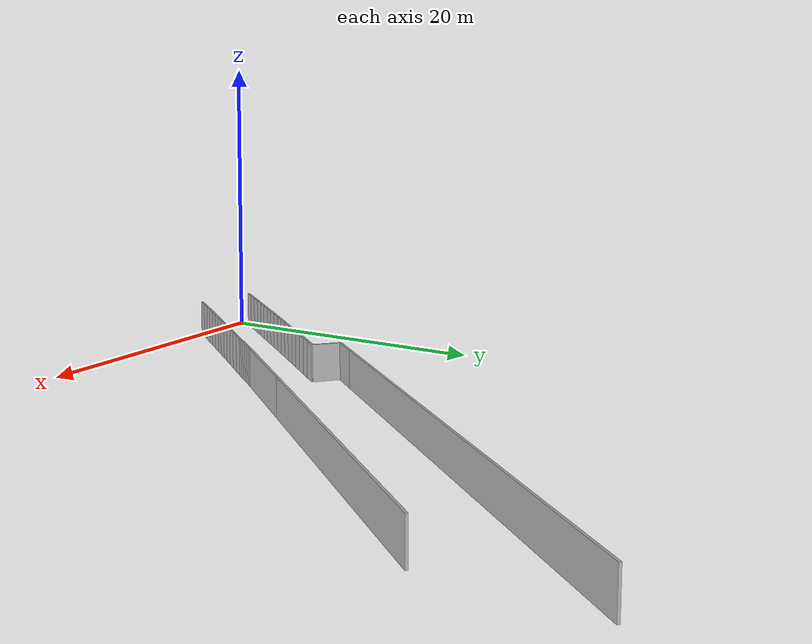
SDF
<?xml version="1.0" ?>
<sdf version="1.6">
  <model name="sps_0738">
    <pose frame="">0 0 0 0 -0 0</pose>
    <static>1</static>
    <self_collide>0</self_collide>
    <allow_auto_disable>0</allow_auto_disable>
    <link name="Wall36">
      <kinematic>0</kinematic>
      <gravity>1</gravity>
      <self_collide>0</self_collide>
      <collision name="collision">
        <geometry>
          <box>
            <size>35.2684 0.15 2.5</size>
          </box>
        </geometry>
        <pose frame="">0 0 0 0 -0 0</pose>
      </collision>
      <visual name="visual">
        <geometry>
          <box>
            <size>35.2684 0.15 2.5</size>
          </box>
        </geometry>
        <pose frame="">0 0 0 0 -0 0</pose>
        <cast_shadows>1</cast_shadows>
        <transparency>0.0</transparency>
      </visual>
      <pose frame="">23.0693 31.3468 1.25 0 0 -2.27376</pose>
    </link>
    <link name="Wall37">
      <kinematic>0</kinematic>
      <gravity>1</gravity>
      <self_collide>0</self_collide>
      <collision name="collision">
        <geometry>
          <box>
            <size>2.2665 0.15 2.5</size>
          </box>
        </geometry>
        <pose frame="">0 0 0 0 -0 0</pose>
      </collision>
      <visual name="visual">
        <geometry>
          <box>
            <size>2.2665 0.15 2.5</size>
          </box>
        </geometry>
        <pose frame="">0 0 0 0 -0 0</pose>
        <cast_shadows>1</cast_shadows>
        <transparency>0.0</transparency>
      </visual>
      <pose frame="">10.9365 17.0285 1.25 0 0 -2.27376</pose>
    </link>
    <link name="Wall38">
      <kinematic>0</kinematic>
      <gravity>1</gravity>
      <self_collide>0</self_collide>
      <collision name="collision">
        <geometry>
          <box>
            <size>7.37648 0.15 2.5</size>
          </box>
        </geometry>
        <pose frame="">0 0 0 0 -0 0</pose>
      </collision>
      <visual name="visual">
        <geometry>
          <box>
            <size>7.37648 0.15 2.5</size>
          </box>
        </geometry>
        <pose frame="">0 0 0 0 -0 0</pose>
        <cast_shadows>1</cast_shadows>
        <transparency>0.0</transparency>
      </visual>
      <pose frame="">17.1869 15.0785 1.25 0 -0 0.868142</pose>
    </link>
    <link name="Wall39">
      <kinematic>0</kinematic>
      <gravity>1</gravity>
      <self_collide>0</self_collide>
      <collision name="collision">
        <geometry>
          <box>
            <size>23.0547 0.15 2.5</size>
          </box>
        </geometry>
        <pose frame="">0 0 0 0 -0 0</pose>
      </collision>
      <visual name="visual">
        <geometry>
          <box>
            <size>23.0547 0.15 2.5</size>
          </box>
        </geometry>
        <pose frame="">0 0 0 0 -0 0</pose>
        <cast_shadows>1</cast_shadows>
        <transparency>0.0</transparency>
      </visual>
      <pose frame="">27.0199 26.6899 1.25 0 -0 0.868142</pose>
    </link>
    <link name="Wall368">
      <kinematic>0</kinematic>
      <gravity>1</gravity>
      <self_collide>0</self_collide>
      <collision name="collision">
        <geometry>
          <box>
            <size>1.92847 0.15 2.5</size>
          </box>
        </geometry>
        <pose frame="">0 0 0 0 -0 0</pose>
      </collision>
      <visual name="visual">
        <geometry>
          <box>
            <size>1.92847 0.15 2.5</size>
          </box>
        </geometry>
        <pose frame="">0 0 0 0 -0 0</pose>
        <cast_shadows>1</cast_shadows>
        <transparency>0.0</transparency>
      </visual>
      <pose frame="">10.9385 15.5393 1.25 0 0 -0.704654</pose>
    </link>
    <link name="Wall9972">
      <kinematic>0</kinematic>
      <gravity>1</gravity>
      <self_collide>0</self_collide>
      <collision name="collision">
        <geometry>
          <box>
            <size>1.01925 0.15 2.5</size>
          </box>
        </geometry>
        <pose frame="">0 0 0 0 -0 0</pose>
      </collision>
      <visual name="visual">
        <geometry>
          <box>
            <size>1.01925 0.15 2.5</size>
          </box>
        </geometry>
        <pose frame="">0 0 0 0 -0 0</pose>
        <cast_shadows>1</cast_shadows>
        <transparency>0.0</transparency>
      </visual>
      <pose frame="">11.346 14.5239 1.25 0 0 -2.26767</pose>
    </link>
    <link name="Wall9973">
      <kinematic>0</kinematic>
      <gravity>1</gravity>
      <self_collide>0</self_collide>
      <collision name="collision">
        <geometry>
          <box>
            <size>1.0192 0.15 2.5</size>
          </box>
        </geometry>
        <pose frame="">0 0 0 0 -0 0</pose>
      </collision>
      <visual name="visual">
        <geometry>
          <box>
            <size>1.0192 0.15 2.5</size>
          </box>
        </geometry>
        <pose frame="">0 0 0 0 -0 0</pose>
        <cast_shadows>1</cast_shadows>
        <transparency>0.0</transparency>
      </visual>
      <pose frame="">10.6922 13.742 1.25 0 0 -2.26677</pose>
    </link>
    <link name="Wall9974">
      <kinematic>0</kinematic>
      <gravity>1</gravity>
      <self_collide>0</self_collide>
      <collision name="collision">
        <geometry>
          <box>
            <size>1.01886 0.15 2.5</size>
          </box>
        </geometry>
        <pose frame="">0 0 0 0 -0 0</pose>
      </collision>
      <visual name="visual">
        <geometry>
          <box>
            <size>1.01886 0.15 2.5</size>
          </box>
        </geometry>
        <pose frame="">0 0 0 0 -0 0</pose>
        <cast_shadows>1</cast_shadows>
        <transparency>0.0</transparency>
      </visual>
      <pose frame="">10.0392 12.9596 1.25 0 0 -2.26572</pose>
    </link>
    <link name="Wall9975">
      <kinematic>0</kinematic>
      <gravity>1</gravity>
      <self_collide>0</self_collide>
      <collision name="collision">
        <geometry>
          <box>
            <size>1.01911 0.15 2.5</size>
          </box>
        </geometry>
        <pose frame="">0 0 0 0 -0 0</pose>
      </collision>
      <visual name="visual">
        <geometry>
          <box>
            <size>1.01911 0.15 2.5</size>
          </box>
        </geometry>
        <pose frame="">0 0 0 0 -0 0</pose>
        <cast_shadows>1</cast_shadows>
        <transparency>0.0</transparency>
      </visual>
      <pose frame="">9.38726 12.1765 1.25 0 0 -2.26442</pose>
    </link>
    <link name="Wall9976">
      <kinematic>0</kinematic>
      <gravity>1</gravity>
      <self_collide>0</self_collide>
      <collision name="collision">
        <geometry>
          <box>
            <size>1.01921 0.15 2.5</size>
          </box>
        </geometry>
        <pose frame="">0 0 0 0 -0 0</pose>
      </collision>
      <visual name="visual">
        <geometry>
          <box>
            <size>1.01921 0.15 2.5</size>
          </box>
        </geometry>
        <pose frame="">0 0 0 0 -0 0</pose>
        <cast_shadows>1</cast_shadows>
        <transparency>0.0</transparency>
      </visual>
      <pose frame="">8.73608 11.3925 1.25 0 0 -2.26341</pose>
    </link>
    <link name="Wall9977">
      <kinematic>0</kinematic>
      <gravity>1</gravity>
      <self_collide>0</self_collide>
      <collision name="collision">
        <geometry>
          <box>
            <size>1.0191 0.15 2.5</size>
          </box>
        </geometry>
        <pose frame="">0 0 0 0 -0 0</pose>
      </collision>
      <visual name="visual">
        <geometry>
          <box>
            <size>1.0191 0.15 2.5</size>
          </box>
        </geometry>
        <pose frame="">0 0 0 0 -0 0</pose>
        <cast_shadows>1</cast_shadows>
        <transparency>0.0</transparency>
      </visual>
      <pose frame="">8.08575 10.6078 1.25 0 0 -2.26225</pose>
    </link>
    <link name="Wall9978">
      <kinematic>0</kinematic>
      <gravity>1</gravity>
      <self_collide>0</self_collide>
      <collision name="collision">
        <geometry>
          <box>
            <size>1.01912 0.15 2.5</size>
          </box>
        </geometry>
        <pose frame="">0 0 0 0 -0 0</pose>
      </collision>
      <visual name="visual">
        <geometry>
          <box>
            <size>1.01912 0.15 2.5</size>
          </box>
        </geometry>
        <pose frame="">0 0 0 0 -0 0</pose>
        <cast_shadows>1</cast_shadows>
        <transparency>0.0</transparency>
      </visual>
      <pose frame="">7.43633 9.8224 1.25 0 0 -2.26115</pose>
    </link>
    <link name="Wall9979">
      <kinematic>0</kinematic>
      <gravity>1</gravity>
      <self_collide>0</self_collide>
      <collision name="collision">
        <geometry>
          <box>
            <size>1.01925 0.15 2.5</size>
          </box>
        </geometry>
        <pose frame="">0 0 0 0 -0 0</pose>
      </collision>
      <visual name="visual">
        <geometry>
          <box>
            <size>1.01925 0.15 2.5</size>
          </box>
        </geometry>
        <pose frame="">0 0 0 0 -0 0</pose>
        <cast_shadows>1</cast_shadows>
        <transparency>0.0</transparency>
      </visual>
      <pose frame="">6.78765 9.0363 1.25 0 0 -2.26027</pose>
    </link>
    <link name="Wall9980">
      <kinematic>0</kinematic>
      <gravity>1</gravity>
      <self_collide>0</self_collide>
      <collision name="collision">
        <geometry>
          <box>
            <size>1.0192 0.15 2.5</size>
          </box>
        </geometry>
        <pose frame="">0 0 0 0 -0 0</pose>
      </collision>
      <visual name="visual">
        <geometry>
          <box>
            <size>1.0192 0.15 2.5</size>
          </box>
        </geometry>
        <pose frame="">0 0 0 0 -0 0</pose>
        <cast_shadows>1</cast_shadows>
        <transparency>0.0</transparency>
      </visual>
      <pose frame="">6.13976 8.2495 1.25 0 0 -2.25907</pose>
    </link>
    <link name="Wall9981">
      <kinematic>0</kinematic>
      <gravity>1</gravity>
      <self_collide>0</self_collide>
      <collision name="collision">
        <geometry>
          <box>
            <size>1.01921 0.15 2.5</size>
          </box>
        </geometry>
        <pose frame="">0 0 0 0 -0 0</pose>
      </collision>
      <visual name="visual">
        <geometry>
          <box>
            <size>1.01921 0.15 2.5</size>
          </box>
        </geometry>
        <pose frame="">0 0 0 0 -0 0</pose>
        <cast_shadows>1</cast_shadows>
        <transparency>0.0</transparency>
      </visual>
      <pose frame="">5.49276 7.46199 1.25 0 0 -2.25805</pose>
    </link>
    <link name="Wall9982">
      <kinematic>0</kinematic>
      <gravity>1</gravity>
      <self_collide>0</self_collide>
      <collision name="collision">
        <geometry>
          <box>
            <size>1.01902 0.15 2.5</size>
          </box>
        </geometry>
        <pose frame="">0 0 0 0 -0 0</pose>
      </collision>
      <visual name="visual">
        <geometry>
          <box>
            <size>1.01902 0.15 2.5</size>
          </box>
        </geometry>
        <pose frame="">0 0 0 0 -0 0</pose>
        <cast_shadows>1</cast_shadows>
        <transparency>0.0</transparency>
      </visual>
      <pose frame="">4.84664 6.67387 1.25 0 0 -2.25697</pose>
    </link>
    <link name="Wall9983">
      <kinematic>0</kinematic>
      <gravity>1</gravity>
      <self_collide>0</self_collide>
      <collision name="collision">
        <geometry>
          <box>
            <size>1.01909 0.15 2.5</size>
          </box>
        </geometry>
        <pose frame="">0 0 0 0 -0 0</pose>
      </collision>
      <visual name="visual">
        <geometry>
          <box>
            <size>1.01909 0.15 2.5</size>
          </box>
        </geometry>
        <pose frame="">0 0 0 0 -0 0</pose>
        <cast_shadows>1</cast_shadows>
        <transparency>0.0</transparency>
      </visual>
      <pose frame="">4.20144 5.88509 1.25 0 0 -2.25583</pose>
    </link>
    <link name="Wall9984">
      <kinematic>0</kinematic>
      <gravity>1</gravity>
      <self_collide>0</self_collide>
      <collision name="collision">
        <geometry>
          <box>
            <size>1.0192 0.15 2.5</size>
          </box>
        </geometry>
        <pose frame="">0 0 0 0 -0 0</pose>
      </collision>
      <visual name="visual">
        <geometry>
          <box>
            <size>1.0192 0.15 2.5</size>
          </box>
        </geometry>
        <pose frame="">0 0 0 0 -0 0</pose>
        <cast_shadows>1</cast_shadows>
        <transparency>0.0</transparency>
      </visual>
      <pose frame="">3.55706 5.0955 1.25 0 0 -2.25473</pose>
    </link>
    <link name="Wall9985">
      <kinematic>0</kinematic>
      <gravity>1</gravity>
      <self_collide>0</self_collide>
      <collision name="collision">
        <geometry>
          <box>
            <size>1.01922 0.15 2.5</size>
          </box>
        </geometry>
        <pose frame="">0 0 0 0 -0 0</pose>
      </collision>
      <visual name="visual">
        <geometry>
          <box>
            <size>1.01922 0.15 2.5</size>
          </box>
        </geometry>
        <pose frame="">0 0 0 0 -0 0</pose>
        <cast_shadows>1</cast_shadows>
        <transparency>0.0</transparency>
      </visual>
      <pose frame="">2.91347 4.30519 1.25 0 0 -2.25371</pose>
    </link>
    <link name="Wall9986">
      <kinematic>0</kinematic>
      <gravity>1</gravity>
      <self_collide>0</self_collide>
      <collision name="collision">
        <geometry>
          <box>
            <size>1.01903 0.15 2.5</size>
          </box>
        </geometry>
        <pose frame="">0 0 0 0 -0 0</pose>
      </collision>
      <visual name="visual">
        <geometry>
          <box>
            <size>1.01903 0.15 2.5</size>
          </box>
        </geometry>
        <pose frame="">0 0 0 0 -0 0</pose>
        <cast_shadows>1</cast_shadows>
        <transparency>0.0</transparency>
      </visual>
      <pose frame="">2.27077 3.51427 1.25 0 0 -2.25263</pose>
    </link>
    <link name="Wall9987">
      <kinematic>0</kinematic>
      <gravity>1</gravity>
      <self_collide>0</self_collide>
      <collision name="collision">
        <geometry>
          <box>
            <size>1.01927 0.15 2.5</size>
          </box>
        </geometry>
        <pose frame="">0 0 0 0 -0 0</pose>
      </collision>
      <visual name="visual">
        <geometry>
          <box>
            <size>1.01927 0.15 2.5</size>
          </box>
        </geometry>
        <pose frame="">0 0 0 0 -0 0</pose>
        <cast_shadows>1</cast_shadows>
        <transparency>0.0</transparency>
      </visual>
      <pose frame="">1.62887 2.72267 1.25 0 0 -2.25167</pose>
    </link>
    <link name="Wall9988">
      <kinematic>0</kinematic>
      <gravity>1</gravity>
      <self_collide>0</self_collide>
      <collision name="collision">
        <geometry>
          <box>
            <size>1.01927 0.15 2.5</size>
          </box>
        </geometry>
        <pose frame="">0 0 0 0 -0 0</pose>
      </collision>
      <visual name="visual">
        <geometry>
          <box>
            <size>1.01927 0.15 2.5</size>
          </box>
        </geometry>
        <pose frame="">0 0 0 0 -0 0</pose>
        <cast_shadows>1</cast_shadows>
        <transparency>0.0</transparency>
      </visual>
      <pose frame="">0.987754 1.93028 1.25 0 0 -2.25044</pose>
    </link>
    <link name="Wall9989">
      <kinematic>0</kinematic>
      <gravity>1</gravity>
      <self_collide>0</self_collide>
      <collision name="collision">
        <geometry>
          <box>
            <size>1.01921 0.15 2.5</size>
          </box>
        </geometry>
        <pose frame="">0 0 0 0 -0 0</pose>
      </collision>
      <visual name="visual">
        <geometry>
          <box>
            <size>1.01921 0.15 2.5</size>
          </box>
        </geometry>
        <pose frame="">0 0 0 0 -0 0</pose>
        <cast_shadows>1</cast_shadows>
        <transparency>0.0</transparency>
      </visual>
      <pose frame="">0.347556 1.13719 1.25 0 0 -2.24941</pose>
    </link>
    <link name="Wall10014">
      <kinematic>0</kinematic>
      <gravity>1</gravity>
      <self_collide>0</self_collide>
      <collision name="collision">
        <geometry>
          <box>
            <size>0.507656 0.15 2.5</size>
          </box>
        </geometry>
        <pose frame="">0 0 0 0 -0 0</pose>
      </collision>
      <visual name="visual">
        <geometry>
          <box>
            <size>0.507656 0.15 2.5</size>
          </box>
        </geometry>
        <pose frame="">0 0 0 0 -0 0</pose>
        <cast_shadows>1</cast_shadows>
        <transparency>0.0</transparency>
      </visual>
      <pose frame="">14.6415 12.0684 1.25 0 0 -2.26246</pose>
    </link>
    <link name="Wall10015">
      <kinematic>0</kinematic>
      <gravity>1</gravity>
      <self_collide>0</self_collide>
      <collision name="collision">
        <geometry>
          <box>
            <size>0.507545 0.15 2.5</size>
          </box>
        </geometry>
        <pose frame="">0 0 0 0 -0 0</pose>
      </collision>
      <visual name="visual">
        <geometry>
          <box>
            <size>0.507545 0.15 2.5</size>
          </box>
        </geometry>
        <pose frame="">0 0 0 0 -0 0</pose>
        <cast_shadows>1</cast_shadows>
        <transparency>0.0</transparency>
      </visual>
      <pose frame="">14.3191 11.6764 1.25 0 0 -2.25594</pose>
    </link>
    <link name="Wall10016">
      <kinematic>0</kinematic>
      <gravity>1</gravity>
      <self_collide>0</self_collide>
      <collision name="collision">
        <geometry>
          <box>
            <size>0.50752 0.15 2.5</size>
          </box>
        </geometry>
        <pose frame="">0 0 0 0 -0 0</pose>
      </collision>
      <visual name="visual">
        <geometry>
          <box>
            <size>0.50752 0.15 2.5</size>
          </box>
        </geometry>
        <pose frame="">0 0 0 0 -0 0</pose>
        <cast_shadows>1</cast_shadows>
        <transparency>0.0</transparency>
      </visual>
      <pose frame="">13.9993 11.2823 1.25 0 0 -2.24901</pose>
    </link>
    <link name="Wall10017">
      <kinematic>0</kinematic>
      <gravity>1</gravity>
      <self_collide>0</self_collide>
      <collision name="collision">
        <geometry>
          <box>
            <size>0.507367 0.15 2.5</size>
          </box>
        </geometry>
        <pose frame="">0 0 0 0 -0 0</pose>
      </collision>
      <visual name="visual">
        <geometry>
          <box>
            <size>0.507367 0.15 2.5</size>
          </box>
        </geometry>
        <pose frame="">0 0 0 0 -0 0</pose>
        <cast_shadows>1</cast_shadows>
        <transparency>0.0</transparency>
      </visual>
      <pose frame="">13.681 10.8871 1.25 0 0 -2.24864</pose>
    </link>
    <link name="Wall10018">
      <kinematic>0</kinematic>
      <gravity>1</gravity>
      <self_collide>0</self_collide>
      <collision name="collision">
        <geometry>
          <box>
            <size>0.507507 0.15 2.5</size>
          </box>
        </geometry>
        <pose frame="">0 0 0 0 -0 0</pose>
      </collision>
      <visual name="visual">
        <geometry>
          <box>
            <size>0.507507 0.15 2.5</size>
          </box>
        </geometry>
        <pose frame="">0 0 0 0 -0 0</pose>
        <cast_shadows>1</cast_shadows>
        <transparency>0.0</transparency>
      </visual>
      <pose frame="">13.3617 10.4927 1.25 0 0 -2.25414</pose>
    </link>
    <link name="Wall10019">
      <kinematic>0</kinematic>
      <gravity>1</gravity>
      <self_collide>0</self_collide>
      <collision name="collision">
        <geometry>
          <box>
            <size>0.50735 0.15 2.5</size>
          </box>
        </geometry>
        <pose frame="">0 0 0 0 -0 0</pose>
      </collision>
      <visual name="visual">
        <geometry>
          <box>
            <size>0.50735 0.15 2.5</size>
          </box>
        </geometry>
        <pose frame="">0 0 0 0 -0 0</pose>
        <cast_shadows>1</cast_shadows>
        <transparency>0.0</transparency>
      </visual>
      <pose frame="">13.0402 10.1001 1.25 0 0 -2.25984</pose>
    </link>
    <link name="Wall10020">
      <kinematic>0</kinematic>
      <gravity>1</gravity>
      <self_collide>0</self_collide>
      <collision name="collision">
        <geometry>
          <box>
            <size>1.01436 0.15 2.5</size>
          </box>
        </geometry>
        <pose frame="">0 0 0 0 -0 0</pose>
      </collision>
      <visual name="visual">
        <geometry>
          <box>
            <size>1.01436 0.15 2.5</size>
          </box>
        </geometry>
        <pose frame="">0 0 0 0 -0 0</pose>
        <cast_shadows>1</cast_shadows>
        <transparency>0.0</transparency>
      </visual>
      <pose frame="">12.5546 9.5143 1.25 0 0 -2.26433</pose>
    </link>
    <link name="Wall10021">
      <kinematic>0</kinematic>
      <gravity>1</gravity>
      <self_collide>0</self_collide>
      <collision name="collision">
        <geometry>
          <box>
            <size>1.01397 0.15 2.5</size>
          </box>
        </geometry>
        <pose frame="">0 0 0 0 -0 0</pose>
      </collision>
      <visual name="visual">
        <geometry>
          <box>
            <size>1.01397 0.15 2.5</size>
          </box>
        </geometry>
        <pose frame="">0 0 0 0 -0 0</pose>
        <cast_shadows>1</cast_shadows>
        <transparency>0.0</transparency>
      </visual>
      <pose frame="">11.9067 8.73408 1.25 0 0 -2.26331</pose>
    </link>
    <link name="Wall10022">
      <kinematic>0</kinematic>
      <gravity>1</gravity>
      <self_collide>0</self_collide>
      <collision name="collision">
        <geometry>
          <box>
            <size>1.01434 0.15 2.5</size>
          </box>
        </geometry>
        <pose frame="">0 0 0 0 -0 0</pose>
      </collision>
      <visual name="visual">
        <geometry>
          <box>
            <size>1.01434 0.15 2.5</size>
          </box>
        </geometry>
        <pose frame="">0 0 0 0 -0 0</pose>
        <cast_shadows>1</cast_shadows>
        <transparency>0.0</transparency>
      </visual>
      <pose frame="">11.2596 7.9532 1.25 0 0 -2.26224</pose>
    </link>
    <link name="Wall10023">
      <kinematic>0</kinematic>
      <gravity>1</gravity>
      <self_collide>0</self_collide>
      <collision name="collision">
        <geometry>
          <box>
            <size>1.01423 0.15 2.5</size>
          </box>
        </geometry>
        <pose frame="">0 0 0 0 -0 0</pose>
      </collision>
      <visual name="visual">
        <geometry>
          <box>
            <size>1.01423 0.15 2.5</size>
          </box>
        </geometry>
        <pose frame="">0 0 0 0 -0 0</pose>
        <cast_shadows>1</cast_shadows>
        <transparency>0.0</transparency>
      </visual>
      <pose frame="">10.6133 7.17149 1.25 0 0 -2.26107</pose>
    </link>
    <link name="Wall10024">
      <kinematic>0</kinematic>
      <gravity>1</gravity>
      <self_collide>0</self_collide>
      <collision name="collision">
        <geometry>
          <box>
            <size>1.01411 0.15 2.5</size>
          </box>
        </geometry>
        <pose frame="">0 0 0 0 -0 0</pose>
      </collision>
      <visual name="visual">
        <geometry>
          <box>
            <size>1.01411 0.15 2.5</size>
          </box>
        </geometry>
        <pose frame="">0 0 0 0 -0 0</pose>
        <cast_shadows>1</cast_shadows>
        <transparency>0.0</transparency>
      </visual>
      <pose frame="">9.96795 6.38917 1.25 0 0 -2.26008</pose>
    </link>
    <link name="Wall10025">
      <kinematic>0</kinematic>
      <gravity>1</gravity>
      <self_collide>0</self_collide>
      <collision name="collision">
        <geometry>
          <box>
            <size>1.01426 0.15 2.5</size>
          </box>
        </geometry>
        <pose frame="">0 0 0 0 -0 0</pose>
      </collision>
      <visual name="visual">
        <geometry>
          <box>
            <size>1.01426 0.15 2.5</size>
          </box>
        </geometry>
        <pose frame="">0 0 0 0 -0 0</pose>
        <cast_shadows>1</cast_shadows>
        <transparency>0.0</transparency>
      </visual>
      <pose frame="">9.32336 5.60618 1.25 0 0 -2.25902</pose>
    </link>
    <link name="Wall10026">
      <kinematic>0</kinematic>
      <gravity>1</gravity>
      <self_collide>0</self_collide>
      <collision name="collision">
        <geometry>
          <box>
            <size>1.01407 0.15 2.5</size>
          </box>
        </geometry>
        <pose frame="">0 0 0 0 -0 0</pose>
      </collision>
      <visual name="visual">
        <geometry>
          <box>
            <size>1.01407 0.15 2.5</size>
          </box>
        </geometry>
        <pose frame="">0 0 0 0 -0 0</pose>
        <cast_shadows>1</cast_shadows>
        <transparency>0.0</transparency>
      </visual>
      <pose frame="">8.67965 4.82249 1.25 0 0 -2.25785</pose>
    </link>
    <link name="Wall10027">
      <kinematic>0</kinematic>
      <gravity>1</gravity>
      <self_collide>0</self_collide>
      <collision name="collision">
        <geometry>
          <box>
            <size>1.0143 0.15 2.5</size>
          </box>
        </geometry>
        <pose frame="">0 0 0 0 -0 0</pose>
      </collision>
      <visual name="visual">
        <geometry>
          <box>
            <size>1.0143 0.15 2.5</size>
          </box>
        </geometry>
        <pose frame="">0 0 0 0 -0 0</pose>
        <cast_shadows>1</cast_shadows>
        <transparency>0.0</transparency>
      </visual>
      <pose frame="">8.03677 4.0381 1.25 0 0 -2.25689</pose>
    </link>
    <link name="Wall10028">
      <kinematic>0</kinematic>
      <gravity>1</gravity>
      <self_collide>0</self_collide>
      <collision name="collision">
        <geometry>
          <box>
            <size>1.01431 0.15 2.5</size>
          </box>
        </geometry>
        <pose frame="">0 0 0 0 -0 0</pose>
      </collision>
      <visual name="visual">
        <geometry>
          <box>
            <size>1.01431 0.15 2.5</size>
          </box>
        </geometry>
        <pose frame="">0 0 0 0 -0 0</pose>
        <cast_shadows>1</cast_shadows>
        <transparency>0.0</transparency>
      </visual>
      <pose frame="">7.39455 3.253 1.25 0 0 -2.25595</pose>
    </link>
    <link name="Wall10029">
      <kinematic>0</kinematic>
      <gravity>1</gravity>
      <self_collide>0</self_collide>
      <collision name="collision">
        <geometry>
          <box>
            <size>1.01397 0.15 2.5</size>
          </box>
        </geometry>
        <pose frame="">0 0 0 0 -0 0</pose>
      </collision>
      <visual name="visual">
        <geometry>
          <box>
            <size>1.01397 0.15 2.5</size>
          </box>
        </geometry>
        <pose frame="">0 0 0 0 -0 0</pose>
        <cast_shadows>1</cast_shadows>
        <transparency>0.0</transparency>
      </visual>
      <pose frame="">6.75335 2.4673 1.25 0 0 -2.25459</pose>
    </link>
    <link name="Wall10030">
      <kinematic>0</kinematic>
      <gravity>1</gravity>
      <self_collide>0</self_collide>
      <collision name="collision">
        <geometry>
          <box>
            <size>1.0141 0.15 2.5</size>
          </box>
        </geometry>
        <pose frame="">0 0 0 0 -0 0</pose>
      </collision>
      <visual name="visual">
        <geometry>
          <box>
            <size>1.0141 0.15 2.5</size>
          </box>
        </geometry>
        <pose frame="">0 0 0 0 -0 0</pose>
        <cast_shadows>1</cast_shadows>
        <transparency>0.0</transparency>
      </visual>
      <pose frame="">6.11306 1.68098 1.25 0 0 -2.25379</pose>
    </link>
    <link name="Wall10031">
      <kinematic>0</kinematic>
      <gravity>1</gravity>
      <self_collide>0</self_collide>
      <collision name="collision">
        <geometry>
          <box>
            <size>1.0142 0.15 2.5</size>
          </box>
        </geometry>
        <pose frame="">0 0 0 0 -0 0</pose>
      </collision>
      <visual name="visual">
        <geometry>
          <box>
            <size>1.0142 0.15 2.5</size>
          </box>
        </geometry>
        <pose frame="">0 0 0 0 -0 0</pose>
        <cast_shadows>1</cast_shadows>
        <transparency>0.0</transparency>
      </visual>
      <pose frame="">5.47356 0.893874 1.25 0 0 -2.25239</pose>
    </link>
    <link name="Wall10032">
      <kinematic>0</kinematic>
      <gravity>1</gravity>
      <self_collide>0</self_collide>
      <collision name="collision">
        <geometry>
          <box>
            <size>1.01433 0.15 2.5</size>
          </box>
        </geometry>
        <pose frame="">0 0 0 0 -0 0</pose>
      </collision>
      <visual name="visual">
        <geometry>
          <box>
            <size>1.01433 0.15 2.5</size>
          </box>
        </geometry>
        <pose frame="">0 0 0 0 -0 0</pose>
        <cast_shadows>1</cast_shadows>
        <transparency>0.0</transparency>
      </visual>
      <pose frame="">4.83486 0.105971 1.25 0 0 -2.25159</pose>
    </link>
  </model>
</sdf>
